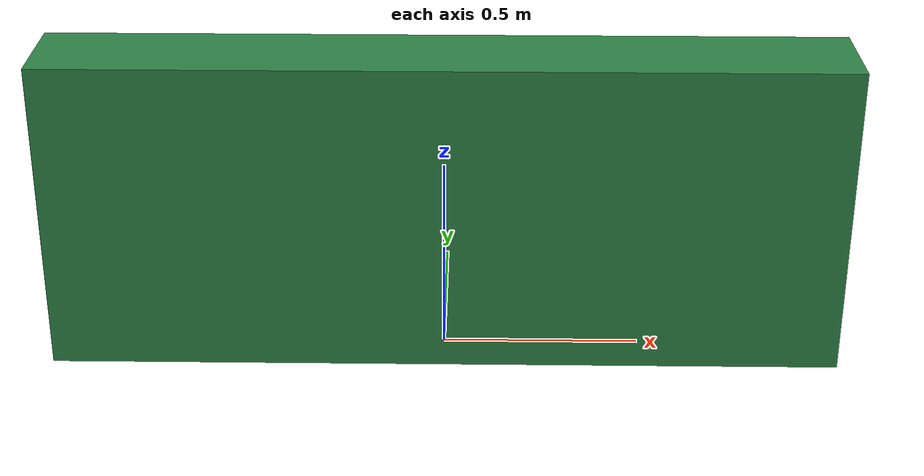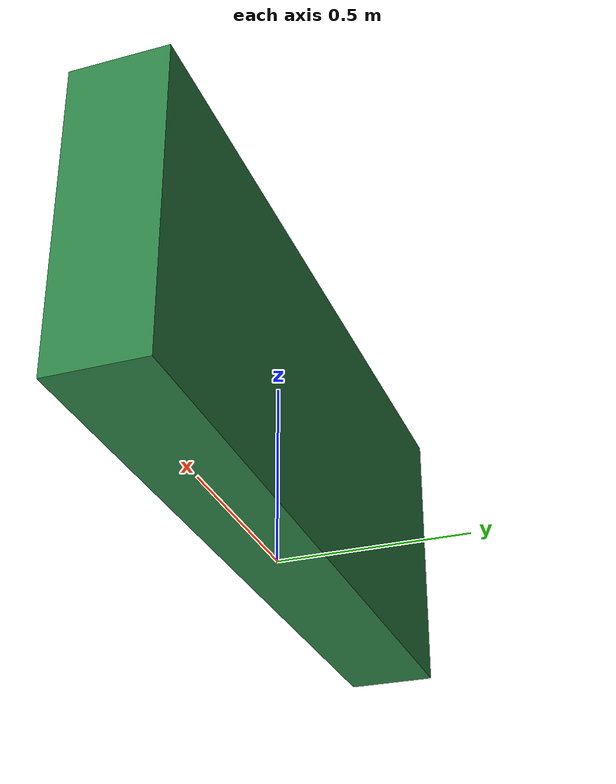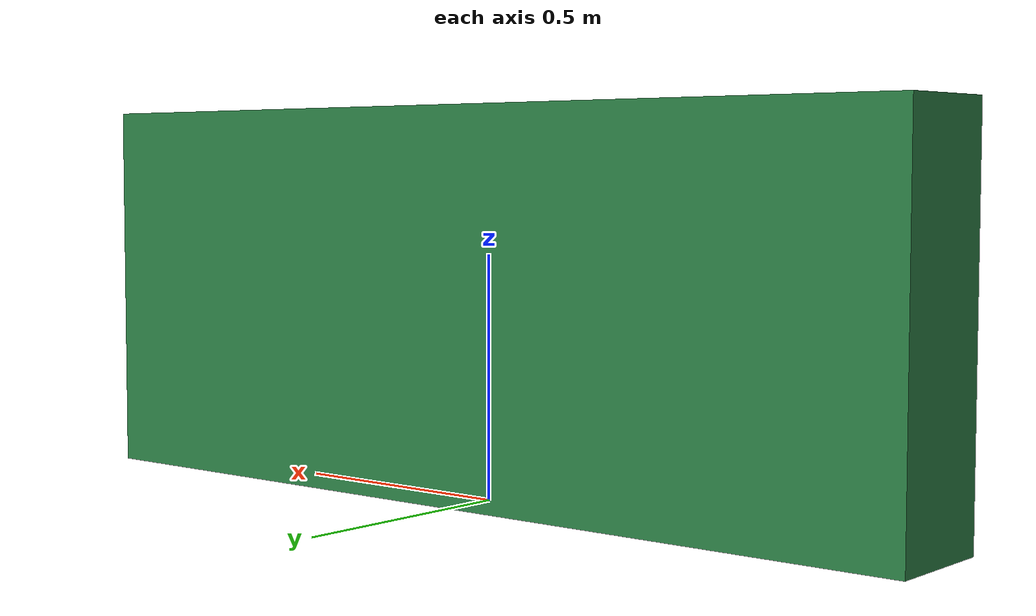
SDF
<?xml version="1.0"?>
<sdf version="1.7">
  <model name="course_wall">
    <static>true</static>
    <link name="wall_link">
      <collision name="wall_collision">
        <pose>0 0 0.4 0 0 0</pose>
        <geometry>
          <box><size>2.0 0.25 0.8</size></box>
        </geometry>
      </collision>
      <visual name="wall_visual">
        <pose>0 0 0.4 0 0 0</pose>
        <geometry>
          <box><size>2.0 0.25 0.8</size></box>
        </geometry>
        <material>
          <ambient>0.18 0.52 0.28 1</ambient>
          <diffuse>0.18 0.52 0.28 1</diffuse>
          <specular>0.05 0.05 0.05 1</specular>
        </material>
      </visual>
    </link>
  </model>
</sdf>
